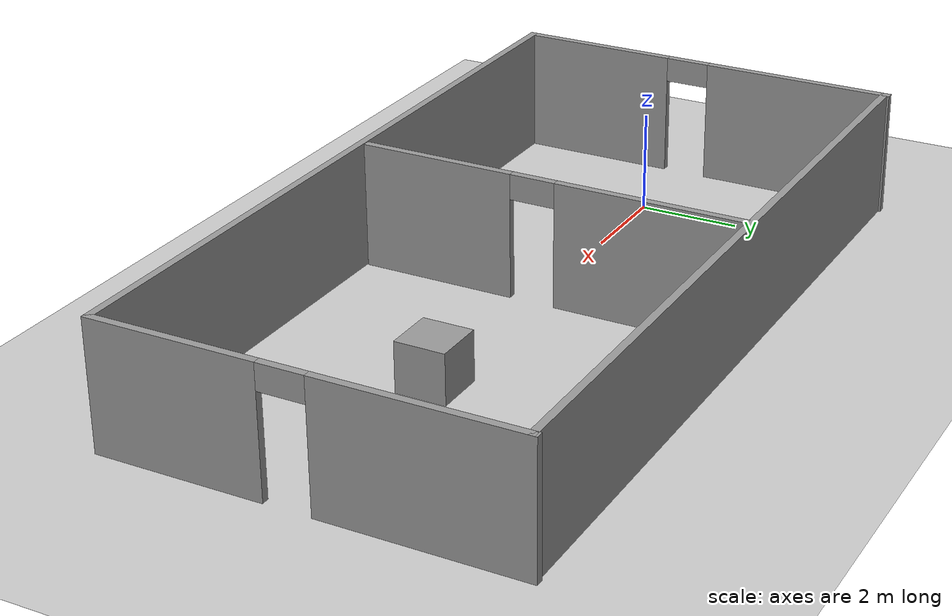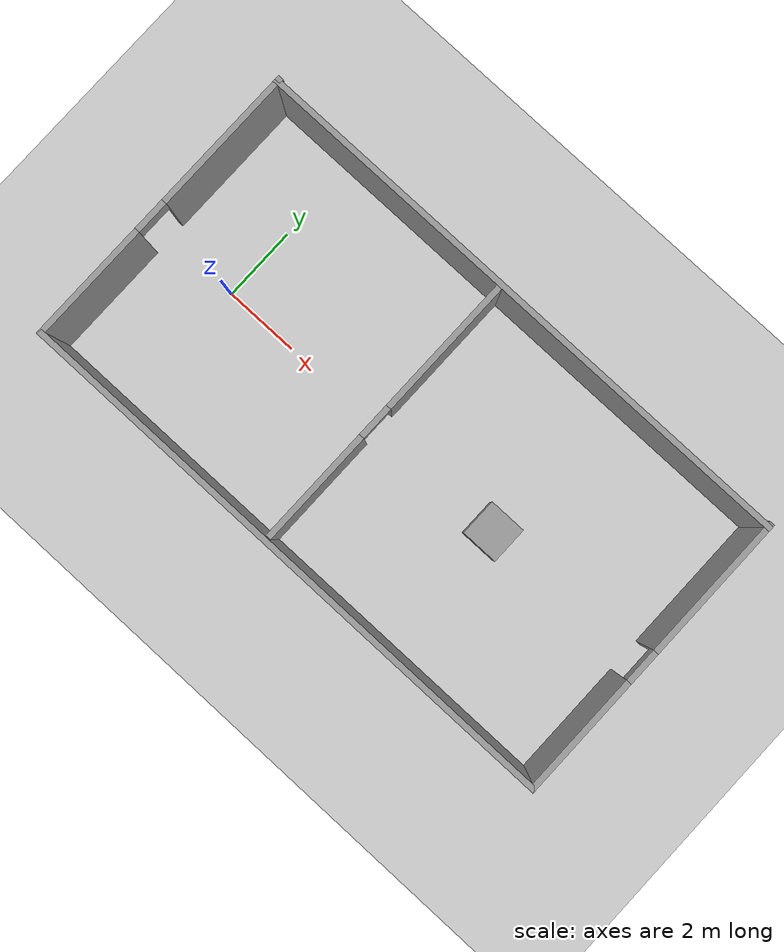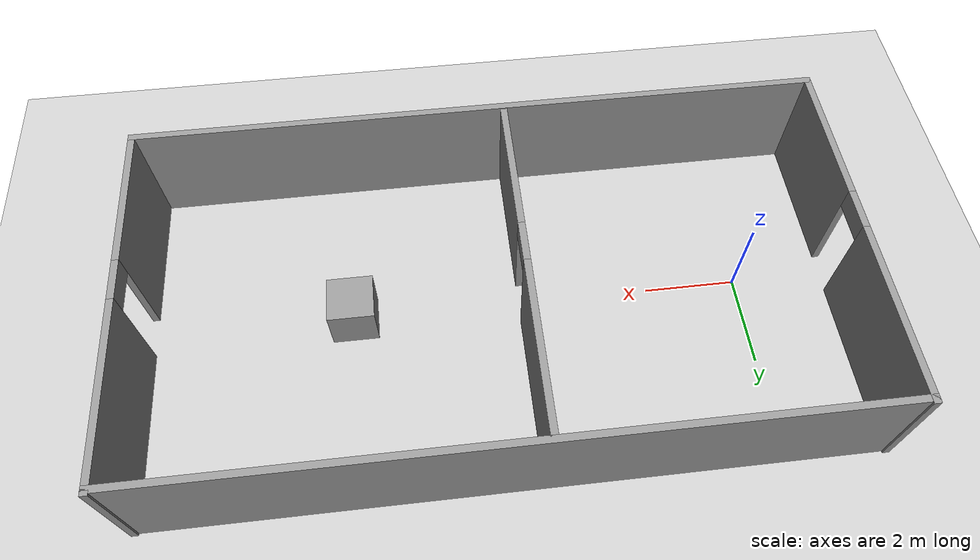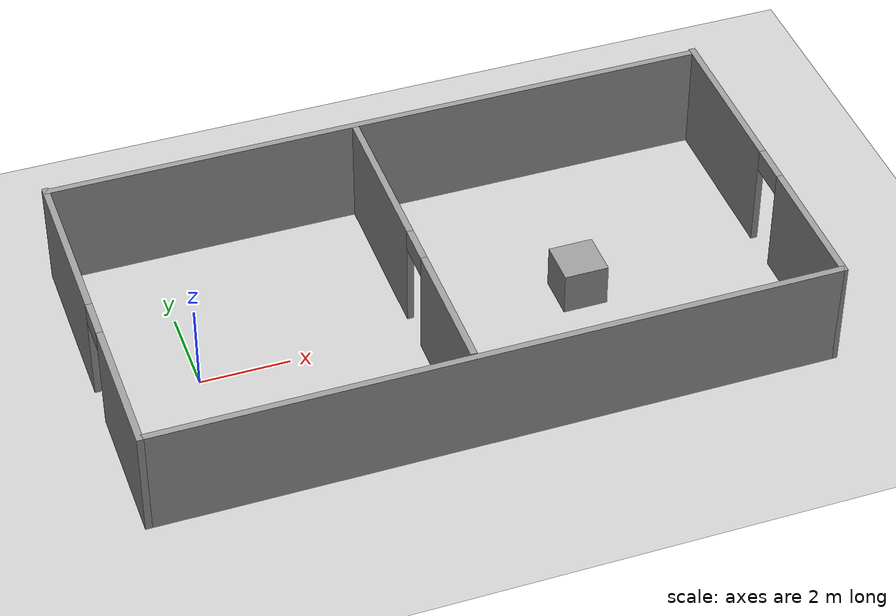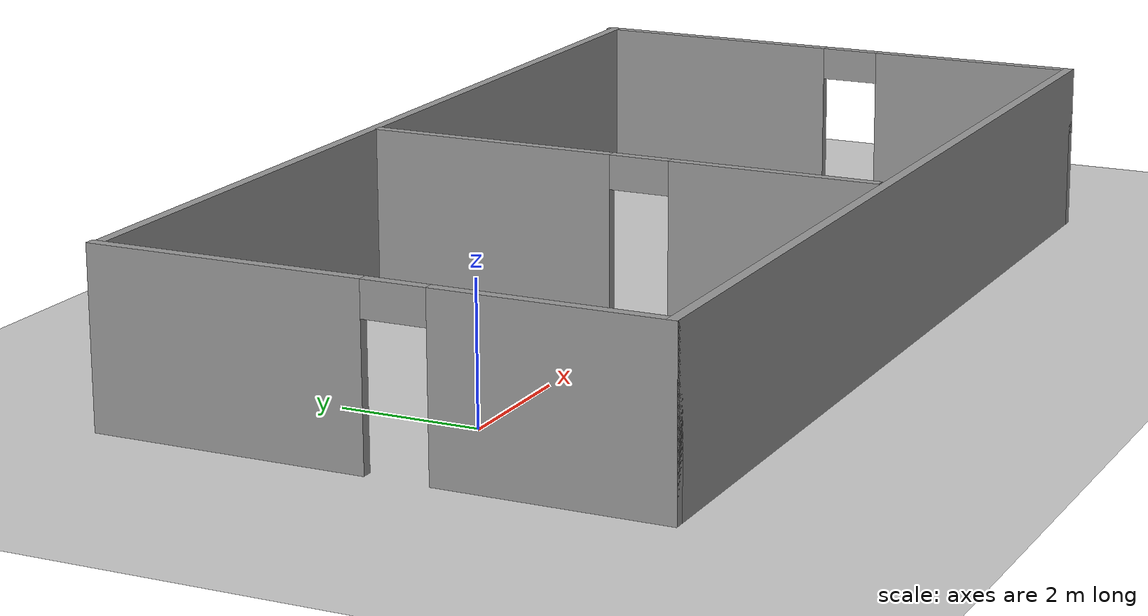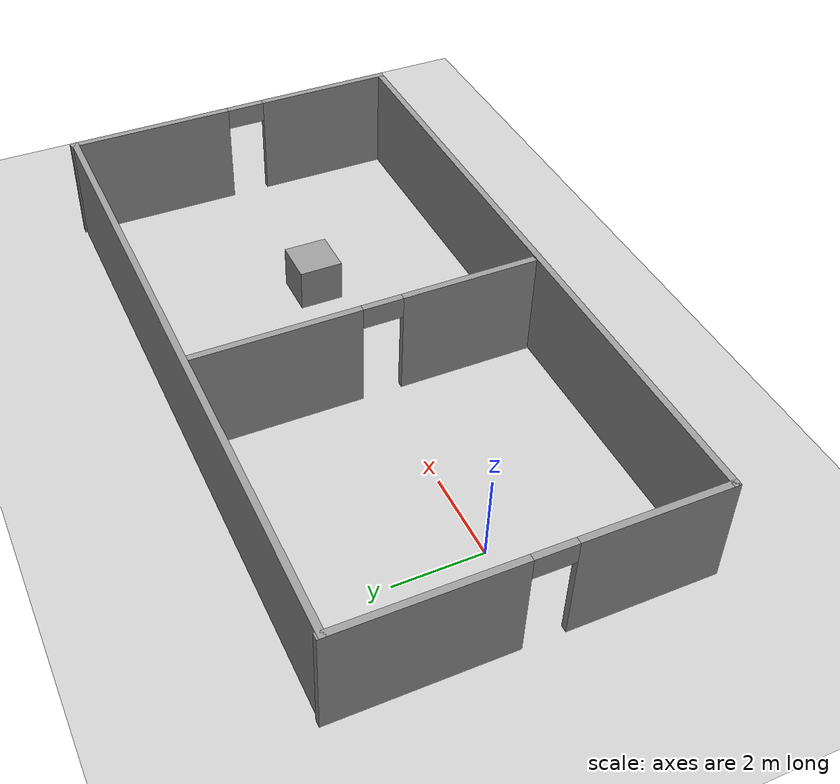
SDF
<sdf version="1.7">
 <world name="default">
  <light name="sun" type="directional">
   <pose>0 0 10 0 -0 0</pose>
   <diffuse>0.8 0.8 0.8 1</diffuse>
   <specular>0.2 0.2 0.2 1</specular>
   <attenuation>
    <range>1000</range>
    <constant>0.9</constant>
    <linear>0.01</linear>
    <quadratic>0.001</quadratic>
   </attenuation>
   <direction>-0.5 0.1 -0.9</direction>
   <spot><inner_angle>0</inner_angle><outer_angle>0</outer_angle><falloff>0</falloff></spot>
  </light>
  <model name="ground_plane">
   <static>1</static>
   <link name="link">
    <collision name="collision">
     <geometry><plane><normal>0 0 1</normal><size>100 100</size></plane></geometry>
     <surface>
      <contact><collide_bitmask>65535</collide_bitmask></contact>
      <friction><ode><mu>100</mu><mu2>50</mu2></ode></friction>
     </surface>
    </collision>
    <visual name="visual">
     <cast_shadows>0</cast_shadows>
     <geometry><plane><normal>0 0 1</normal><size>100 100</size></plane></geometry>
     <material>
      <script><uri>file://media/materials/scripts/gazebo.material</uri><name>Gazebo/Grey</name></script>
     </material>
    </visual>
   </link>
  </model>
  <gravity>0 0 -9.8</gravity>
  <magnetic_field>6e-06 2.3e-05 -4.2e-05</magnetic_field>
  <atmosphere type="adiabatic"/>
  <physics type="ode">
   <max_step_size>0.001</max_step_size>
   <real_time_factor>1</real_time_factor>
   <real_time_update_rate>1000</real_time_update_rate>
  </physics>
  <scene><ambient>0.4 0.4 0.4 1</ambient><background>0.7 0.7 0.7 1</background><shadows>1</shadows></scene>
  <spherical_coordinates>
   <surface_model>EARTH_WGS84</surface_model>
   <latitude_deg>0</latitude_deg>
   <longitude_deg>0</longitude_deg>
   <elevation>0</elevation>
   <heading_deg>0</heading_deg>
  </spherical_coordinates>
  <model name="Untitled">
   <pose>5.44389 0.30175 0 0 -0 0</pose>
   <link name="Wall_11">
    <pose>7.54497 -0 0 0 -0 -1.5708</pose>
    <visual name="Wall_11_Visual_0">
     <pose>-2.08396 0 1.25 0 -0 0</pose>
     <geometry><box><size>3.91613 0.15 2.5</size></box></geometry>
     <material>
      <script><uri>file://media/materials/scripts/gazebo.material</uri><name>Gazebo/Grey</name></script>
      <ambient>1 1 1 1</ambient>
     </material>
     <meta><layer>0</layer></meta>
    </visual>
    <collision name="Wall_11_Collision_0">
     <geometry><box><size>3.91613 0.15 2.5</size></box></geometry>
     <pose>-2.08396 0 1.25 0 -0 0</pose>
    </collision>
    <visual name="Wall_11_Visual_1">
     <pose>2.40807 0 1.25 0 -0 0</pose>
     <geometry><box><size>3.26792 0.15 2.5</size></box></geometry>
     <material>
      <script><uri>file://media/materials/scripts/gazebo.material</uri><name>Gazebo/Grey</name></script>
      <ambient>1 1 1 1</ambient>
     </material>
     <meta><layer>0</layer></meta>
    </visual>
    <collision name="Wall_11_Collision_1">
     <geometry><box><size>3.26792 0.15 2.5</size></box></geometry>
     <pose>2.40807 0 1.25 0 -0 0</pose>
    </collision>
    <visual name="Wall_11_Visual_2">
     <pose>0.324106 0 2.25 0 -0 0</pose>
     <geometry><box><size>0.9 0.15 0.5</size></box></geometry>
     <material>
      <script><uri>file://media/materials/scripts/gazebo.material</uri><name>Gazebo/Grey</name></script>
      <ambient>1 1 1 1</ambient>
     </material>
     <meta><layer>0</layer></meta>
    </visual>
    <collision name="Wall_11_Collision_2">
     <geometry><box><size>0.9 0.15 0.5</size></box></geometry>
     <pose>0.324106 0 2.25 0 -0 0</pose>
    </collision>
   </link>
   <link name="Wall_13">
    <collision name="Wall_13_Collision">
     <geometry><box><size>15.2399 0.15 2.5</size></box></geometry>
     <pose>0 0 1.25 0 -0 0</pose>
    </collision>
    <visual name="Wall_13_Visual">
     <pose>0 0 1.25 0 -0 0</pose>
     <geometry><box><size>15.2399 0.15 2.5</size></box></geometry>
     <material>
      <script><uri>file://media/materials/scripts/gazebo.material</uri><name>Gazebo/Grey</name></script>
      <ambient>1 1 1 1</ambient>
     </material>
     <meta><layer>0</layer></meta>
    </visual>
    <pose>0 3.92657 0 0 -0 0</pose>
   </link>
   <link name="Wall_15">
    <collision name="Wall_15_Collision">
     <geometry><box><size>15.2399 0.15 2.5</size></box></geometry>
     <pose>0 0 1.25 0 -0 0</pose>
    </collision>
    <visual name="Wall_15_Visual">
     <pose>0 0 1.25 0 -0 0</pose>
     <geometry><box><size>15.2399 0.15 2.5</size></box></geometry>
     <material>
      <script><uri>file://media/materials/scripts/gazebo.material</uri><name>Gazebo/Grey</name></script>
      <ambient>1 1 1 1</ambient>
     </material>
     <meta><layer>0</layer></meta>
    </visual>
    <pose>0 -3.96703 0 0 -0 0</pose>
   </link>
   <link name="Wall_7">
    <pose>-7.54497 -0 0 0 -0 1.5708</pose>
    <visual name="Wall_7_Visual_0">
     <pose>-2.40807 0 1.25 0 -0 0</pose>
     <geometry><box><size>3.26792 0.15 2.5</size></box></geometry>
     <material>
      <script><uri>file://media/materials/scripts/gazebo.material</uri><name>Gazebo/Grey</name></script>
      <ambient>1 1 1 1</ambient>
     </material>
     <meta><layer>0</layer></meta>
    </visual>
    <collision name="Wall_7_Collision_0">
     <geometry><box><size>3.26792 0.15 2.5</size></box></geometry>
     <pose>-2.40807 0 1.25 0 -0 0</pose>
    </collision>
    <visual name="Wall_7_Visual_1">
     <pose>2.08396 0 1.25 0 -0 0</pose>
     <geometry><box><size>3.91613 0.15 2.5</size></box></geometry>
     <material>
      <script><uri>file://media/materials/scripts/gazebo.material</uri><name>Gazebo/Grey</name></script>
      <ambient>1 1 1 1</ambient>
     </material>
     <meta><layer>0</layer></meta>
    </visual>
    <collision name="Wall_7_Collision_1">
     <geometry><box><size>3.91613 0.15 2.5</size></box></geometry>
     <pose>2.08396 0 1.25 0 -0 0</pose>
    </collision>
    <visual name="Wall_7_Visual_2">
     <pose>-0.324106 0 2.25 0 -0 0</pose>
     <geometry><box><size>0.9 0.15 0.5</size></box></geometry>
     <material>
      <script><uri>file://media/materials/scripts/gazebo.material</uri><name>Gazebo/Grey</name></script>
      <ambient>1 1 1 1</ambient>
     </material>
     <meta><layer>0</layer></meta>
    </visual>
    <collision name="Wall_7_Collision_2">
     <geometry><box><size>0.9 0.15 0.5</size></box></geometry>
     <pose>-0.324106 0 2.25 0 -0 0</pose>
    </collision>
   </link>
   <link name="Wall_9">
    <pose>-0.586605 0.002061 0 0 -0 -1.5708</pose>
    <visual name="Wall_9_Visual_0">
     <pose>-2.00149 0 1.25 0 -0 0</pose>
     <geometry><box><size>3.74702 0.15 2.5</size></box></geometry>
     <material>
      <script><uri>file://media/materials/scripts/gazebo.material</uri><name>Gazebo/Grey</name></script>
      <ambient>1 1 1 1</ambient>
     </material>
     <meta><layer>0</layer></meta>
    </visual>
    <collision name="Wall_9_Collision_0">
     <geometry><box><size>3.74702 0.15 2.5</size></box></geometry>
     <pose>-2.00149 0 1.25 0 -0 0</pose>
    </collision>
    <visual name="Wall_9_Visual_1">
     <pose>2.32351 0 1.25 0 -0 0</pose>
     <geometry><box><size>3.10298 0.15 2.5</size></box></geometry>
     <material>
      <script><uri>file://media/materials/scripts/gazebo.material</uri><name>Gazebo/Grey</name></script>
      <ambient>1 1 1 1</ambient>
     </material>
     <meta><layer>0</layer></meta>
    </visual>
    <collision name="Wall_9_Collision_1">
     <geometry><box><size>3.10298 0.15 2.5</size></box></geometry>
     <pose>2.32351 0 1.25 0 -0 0</pose>
    </collision>
    <visual name="Wall_9_Visual_2">
     <pose>0.322023 0 2.25 0 -0 0</pose>
     <geometry><box><size>0.9 0.15 0.5</size></box></geometry>
     <material>
      <script><uri>file://media/materials/scripts/gazebo.material</uri><name>Gazebo/Grey</name></script>
      <ambient>1 1 1 1</ambient>
     </material>
     <meta><layer>0</layer></meta>
    </visual>
    <collision name="Wall_9_Collision_2">
     <geometry><box><size>0.9 0.15 0.5</size></box></geometry>
     <pose>0.322023 0 2.25 0 -0 0</pose>
    </collision>
   </link>
   <static>1</static>
  </model>
  <model name="unit_box">
   <pose>8.57242 0.01812 0.5 0 -0 0</pose>
   <link name="link">
    <inertial>
     <mass>1</mass>
     <inertia>
      <ixx>0.166667</ixx>
      <ixy>0</ixy>
      <ixz>0</ixz>
      <iyy>0.166667</iyy>
      <iyz>0</iyz>
      <izz>0.166667</izz>
     </inertia>
    </inertial>
    <collision name="collision"><geometry><box><size>1 1 1</size></box></geometry></collision>
    <visual name="visual">
     <geometry><box><size>1 1 1</size></box></geometry>
     <material>
      <script><name>Gazebo/Grey</name><uri>file://media/materials/scripts/gazebo.material</uri></script>
     </material>
    </visual>
   </link>
  </model>
 </world>
</sdf>
